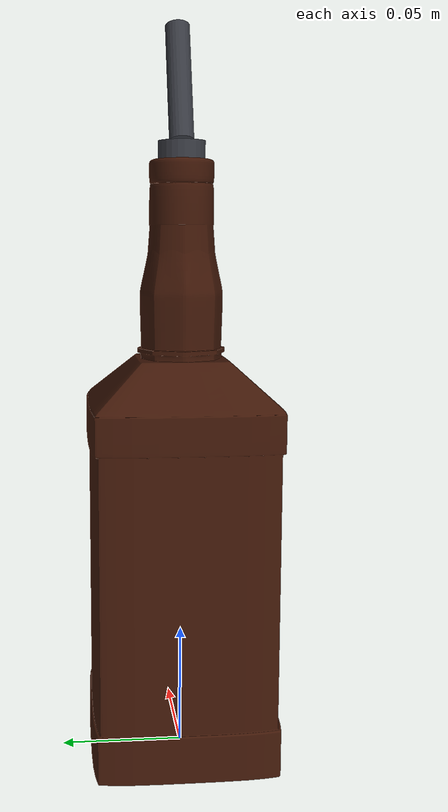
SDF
<?xml version="1.0" ?>
<sdf version="1.9">
  <model name="jack_daniels_bottle">
    <!-- Link origin sits at the center of the bottle's base, so placing the
         model's pose z at table height puts the bottle exactly on the surface. -->
    <link name="bottle_link">
      <inertial>
        <pose>0 0 0.1225 0 0 0</pose>
        <mass>1.35</mass>
        <inertia>
          <ixx>0.007256</ixx>
          <iyy>0.007256</iyy>
          <izz>0.001006</izz>
          <ixy>0</ixy>
          <ixz>0</ixz>
          <iyz>0</iyz>
        </inertia>
      </inertial>

      <visual name="bottle_visual">
        <!-- source mesh is Y-up (Blender OBJ export); rotate +90 deg about X
             so the bottle's height axis becomes Z-up as SDF expects. -->
        <pose>0 0 0 1.570796 0 0</pose>
        <geometry>
          <mesh>
            <uri>meshes/bottle.obj</uri>
          </mesh>
        </geometry>
        <material>
          <ambient>0.05 0.02 0.01 1</ambient>
          <diffuse>0.25 0.09 0.03 1</diffuse>
          <specular>0.4 0.4 0.4 1</specular>
          <emissive>0 0 0 1</emissive>
        </material>
      </visual>

      <collision name="bottle_body_collision">
        <pose>0 0 0.0750 0 0 0</pose>
        <geometry>
          <box>
            <size>0.0772 0.0772 0.150</size>
          </box>
        </geometry>
        <surface>
          <friction>
            <ode>
              <mu>0.9</mu>
              <mu2>0.9</mu2>
            </ode>
          </friction>
        </surface>
      </collision>

      <collision name="bottle_shoulder_collision">
        <pose>0 0 0.1625 0 0 0</pose>
        <geometry>
          <cylinder>
            <radius>0.0250</radius>
            <length>0.025</length>
          </cylinder>
        </geometry>
        <surface>
          <friction>
            <ode>
              <mu>0.9</mu>
              <mu2>0.9</mu2>
            </ode>
          </friction>
        </surface>
      </collision>

      <collision name="bottle_neck_collision">
        <pose>0 0 0.2100 0 0 0</pose>
        <geometry>
          <cylinder>
            <radius>0.0165</radius>
            <length>0.070</length>
          </cylinder>
        </geometry>
        <surface>
          <friction>
            <ode>
              <mu>0.9</mu>
              <mu2>0.9</mu2>
            </ode>
          </friction>
        </surface>
      </collision>

      <collision name="bottle_collar_collision">
        <pose>0 0 0.2360 0 0 0</pose>
        <geometry>
          <cylinder>
            <radius>0.0210</radius>
            <length>0.008</length>
          </cylinder>
        </geometry>
        <surface>
          <friction>
            <ode>
              <mu>0.9</mu>
              <mu2>0.9</mu2>
            </ode>
          </friction>
        </surface>
      </collision>

      <visual name="bottle_pourer_body_visual">
        <pose>0 0 0.2410 0 0 0</pose>
        <geometry><cylinder><radius>0.0095</radius><length>0.022</length></cylinder></geometry>
        <material>
          <ambient>0.05 0.05 0.06 1</ambient>
          <diffuse>0.22 0.23 0.26 1</diffuse>
          <specular>0.7 0.7 0.7 1</specular>
        </material>
      </visual>
      <visual name="bottle_pourer_spout_visual">
        <pose>0.0086 0 0.2755 0 0.349066 0</pose>
        <geometry><cylinder><radius>0.005</radius><length>0.050</length></cylinder></geometry>
        <material>
          <ambient>0.05 0.05 0.06 1</ambient>
          <diffuse>0.22 0.23 0.26 1</diffuse>
          <specular>0.7 0.7 0.7 1</specular>
        </material>
      </visual>

      <collision name="bottle_pourer_body_collision">
        <pose>0 0 0.2410 0 0 0</pose>
        <geometry><cylinder><radius>0.0095</radius><length>0.022</length></cylinder></geometry>
        <surface><friction><ode><mu>0.9</mu><mu2>0.9</mu2></ode></friction></surface>
      </collision>
      <collision name="bottle_pourer_spout_collision">
        <pose>0.0086 0 0.2755 0 0.349066 0</pose>
        <geometry><cylinder><radius>0.005</radius><length>0.050</length></cylinder></geometry>
        <surface><friction><ode><mu>0.9</mu><mu2>0.9</mu2></ode></friction></surface>
      </collision>
    </link>
  </model>
</sdf>
